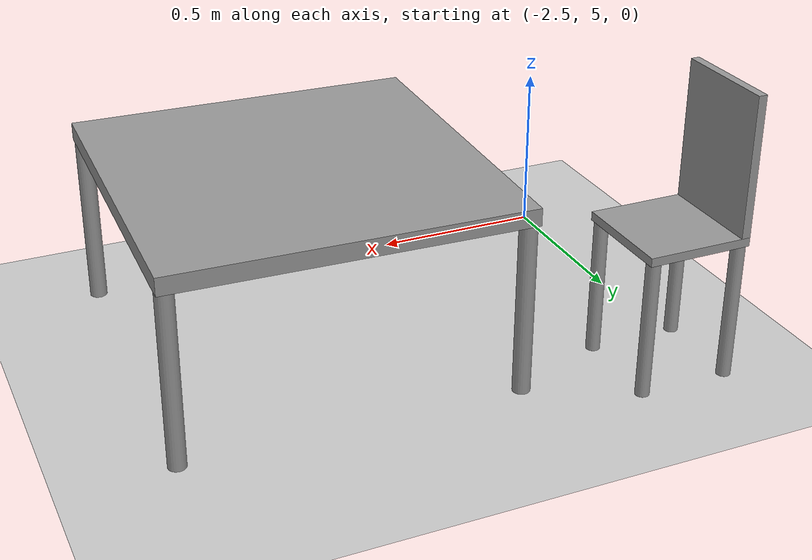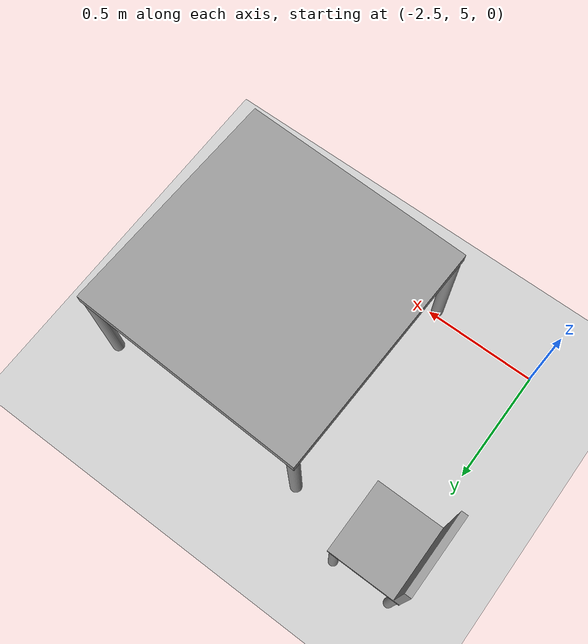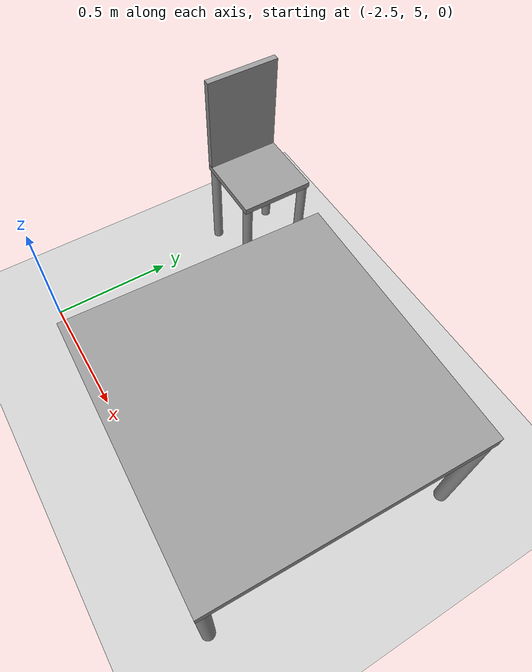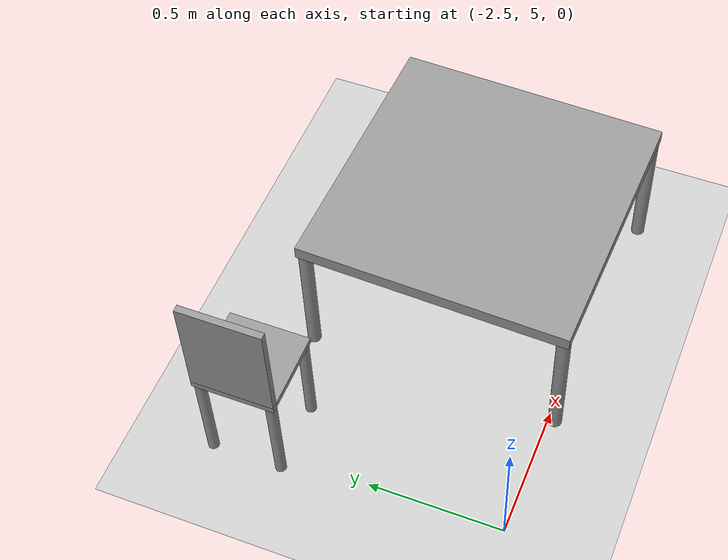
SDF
<sdf version="1.6">
 <world name="default">
  <model name="ground_plane">
   <static>1</static>
   <link name="link">
    <collision name="collision">
     <geometry><plane><normal>0 0 1</normal><size>100 100</size></plane></geometry>
     <surface><friction><ode><mu>100</mu><mu2>50</mu2></ode></friction></surface>
    </collision>
    <visual name="visual">
     <cast_shadows>0</cast_shadows>
     <geometry><plane><normal>0 0 1</normal><size>100 100</size></plane></geometry>
     <material>
      <script><uri>file://media/materials/scripts/gazebo.material</uri><name>Gazebo/Grey</name></script>
     </material>
    </visual>
   </link>
  </model>
  <model name="myTable">
   <link name="link_0">
    <pose>7.65666 6.42879 0.72 0 -0 0</pose>
    <inertial>
     <mass>1</mass>
     <inertia>
      <ixx>0.166667</ixx>
      <ixy>0</ixy>
      <ixz>0</ixz>
      <iyy>0.166667</iyy>
      <iyz>0</iyz>
      <izz>0.166667</izz>
     </inertia>
    </inertial>
    <visual name="visual">
     <geometry><box><size>1 1 0.05</size></box></geometry>
     <material>
      <lighting>1</lighting>
      <script><uri>file://media/materials/scripts/gazebo.material</uri><name>Gazebo/Grey</name></script>
      <ambient>0.3 0.3 0.3 1</ambient>
      <diffuse>0.7 0.7 0.7 1</diffuse>
      <specular>0.01 0.01 0.01 1</specular>
      <emissive>0 0 0 1</emissive>
      <shader type="vertex"><normal_map>__default__</normal_map></shader>
     </material>
    </visual>
    <collision name="collision">
     <geometry><box><size>1 1 0.05</size></box></geometry>
     <surface>
      <friction>
       <ode><mu>1</mu><mu2>1</mu2><fdir1>0 0 0</fdir1><slip1>0</slip1><slip2>0</slip2></ode>
       <torsional>
        <coefficient>1</coefficient>
        <patch_radius>0</patch_radius>
        <surface_radius>0</surface_radius>
        <use_patch_radius>1</use_patch_radius>
        <ode><slip>0</slip></ode>
       </torsional>
      </friction>
      <bounce><restitution_coefficient>0</restitution_coefficient><threshold>1e+06</threshold></bounce>
      <contact>
       <collide_without_contact>0</collide_without_contact>
       <collide_without_contact_bitmask>1</collide_without_contact_bitmask>
       <collide_bitmask>1</collide_bitmask>
       <ode>
        <soft_cfm>0</soft_cfm>
        <soft_erp>0.2</soft_erp>
        <kp>1e+13</kp>
        <kd>1</kd>
        <max_vel>0.01</max_vel>
        <min_depth>0</min_depth>
       </ode>
       <bullet>
        <split_impulse>1</split_impulse>
        <split_impulse_penetration_threshold>-0.01</split_impulse_penetration_threshold>
        <soft_cfm>0</soft_cfm>
        <soft_erp>0.2</soft_erp>
        <kp>1e+13</kp>
        <kd>1</kd>
       </bullet>
      </contact>
     </surface>
    </collision>
   </link>
   <link name="link_1">
    <pose>7.18166 5.95379 0.445 0 -0 0</pose>
    <inertial>
     <mass>1</mass>
     <inertia><ixx>0.145833</ixx><ixy>0</ixy><ixz>0</ixz><iyy>0.145833</iyy><iyz>0</iyz><izz>0.125</izz></inertia>
    </inertial>
    <visual name="visual">
     <geometry><cylinder><radius>0.025</radius><length>0.5</length></cylinder></geometry>
     <material>
      <lighting>1</lighting>
      <script><uri>file://media/materials/scripts/gazebo.material</uri><name>Gazebo/Grey</name></script>
      <ambient>0.3 0.3 0.3 1</ambient>
      <diffuse>0.7 0.7 0.7 1</diffuse>
      <specular>0.01 0.01 0.01 1</specular>
      <emissive>0 0 0 1</emissive>
      <shader type="vertex"><normal_map>__default__</normal_map></shader>
     </material>
    </visual>
    <collision name="collision">
     <geometry><cylinder><radius>0.025</radius><length>0.5</length></cylinder></geometry>
     <surface>
      <friction>
       <ode><mu>1</mu><mu2>1</mu2><fdir1>0 0 0</fdir1><slip1>0</slip1><slip2>0</slip2></ode>
       <torsional>
        <coefficient>1</coefficient>
        <patch_radius>0</patch_radius>
        <surface_radius>0</surface_radius>
        <use_patch_radius>1</use_patch_radius>
        <ode><slip>0</slip></ode>
       </torsional>
      </friction>
      <bounce><restitution_coefficient>0</restitution_coefficient><threshold>1e+06</threshold></bounce>
      <contact>
       <collide_without_contact>0</collide_without_contact>
       <collide_without_contact_bitmask>1</collide_without_contact_bitmask>
       <collide_bitmask>1</collide_bitmask>
       <ode>
        <soft_cfm>0</soft_cfm>
        <soft_erp>0.2</soft_erp>
        <kp>1e+13</kp>
        <kd>1</kd>
        <max_vel>0.01</max_vel>
        <min_depth>0</min_depth>
       </ode>
       <bullet>
        <split_impulse>1</split_impulse>
        <split_impulse_penetration_threshold>-0.01</split_impulse_penetration_threshold>
        <soft_cfm>0</soft_cfm>
        <soft_erp>0.2</soft_erp>
        <kp>1e+13</kp>
        <kd>1</kd>
       </bullet>
      </contact>
     </surface>
    </collision>
   </link>
   <link name="link_1_clone">
    <pose>7.18166 6.90379 0.445 0 -0 0</pose>
    <inertial>
     <mass>1</mass>
     <inertia><ixx>0.145833</ixx><ixy>0</ixy><ixz>0</ixz><iyy>0.145833</iyy><iyz>0</iyz><izz>0.125</izz></inertia>
    </inertial>
    <visual name="visual">
     <geometry><cylinder><radius>0.025</radius><length>0.5</length></cylinder></geometry>
     <material>
      <lighting>1</lighting>
      <script><uri>file://media/materials/scripts/gazebo.material</uri><name>Gazebo/Grey</name></script>
      <ambient>0.3 0.3 0.3 1</ambient>
      <diffuse>0.7 0.7 0.7 1</diffuse>
      <specular>0.01 0.01 0.01 1</specular>
      <emissive>0 0 0 1</emissive>
      <shader type="vertex"><normal_map>__default__</normal_map></shader>
     </material>
    </visual>
    <collision name="collision">
     <geometry><cylinder><radius>0.025</radius><length>0.5</length></cylinder></geometry>
     <surface>
      <friction>
       <ode><mu>1</mu><mu2>1</mu2><fdir1>0 0 0</fdir1><slip1>0</slip1><slip2>0</slip2></ode>
       <torsional>
        <coefficient>1</coefficient>
        <patch_radius>0</patch_radius>
        <surface_radius>0</surface_radius>
        <use_patch_radius>1</use_patch_radius>
        <ode><slip>0</slip></ode>
       </torsional>
      </friction>
      <bounce><restitution_coefficient>0</restitution_coefficient><threshold>1e+06</threshold></bounce>
      <contact>
       <collide_without_contact>0</collide_without_contact>
       <collide_without_contact_bitmask>1</collide_without_contact_bitmask>
       <collide_bitmask>1</collide_bitmask>
       <ode>
        <soft_cfm>0</soft_cfm>
        <soft_erp>0.2</soft_erp>
        <kp>1e+13</kp>
        <kd>1</kd>
        <max_vel>0.01</max_vel>
        <min_depth>0</min_depth>
       </ode>
       <bullet>
        <split_impulse>1</split_impulse>
        <split_impulse_penetration_threshold>-0.01</split_impulse_penetration_threshold>
        <soft_cfm>0</soft_cfm>
        <soft_erp>0.2</soft_erp>
        <kp>1e+13</kp>
        <kd>1</kd>
       </bullet>
      </contact>
     </surface>
    </collision>
   </link>
   <link name="link_1_clone_0">
    <pose>8.13166 6.90379 0.445 0 -0 0</pose>
    <inertial>
     <mass>1</mass>
     <inertia><ixx>0.145833</ixx><ixy>0</ixy><ixz>0</ixz><iyy>0.145833</iyy><iyz>0</iyz><izz>0.125</izz></inertia>
    </inertial>
    <visual name="visual">
     <geometry><cylinder><radius>0.025</radius><length>0.5</length></cylinder></geometry>
     <material>
      <lighting>1</lighting>
      <script><uri>file://media/materials/scripts/gazebo.material</uri><name>Gazebo/Grey</name></script>
      <ambient>0.3 0.3 0.3 1</ambient>
      <diffuse>0.7 0.7 0.7 1</diffuse>
      <specular>0.01 0.01 0.01 1</specular>
      <emissive>0 0 0 1</emissive>
      <shader type="vertex"><normal_map>__default__</normal_map></shader>
     </material>
    </visual>
    <collision name="collision">
     <geometry><cylinder><radius>0.025</radius><length>0.5</length></cylinder></geometry>
     <surface>
      <friction>
       <ode><mu>1</mu><mu2>1</mu2><fdir1>0 0 0</fdir1><slip1>0</slip1><slip2>0</slip2></ode>
       <torsional>
        <coefficient>1</coefficient>
        <patch_radius>0</patch_radius>
        <surface_radius>0</surface_radius>
        <use_patch_radius>1</use_patch_radius>
        <ode><slip>0</slip></ode>
       </torsional>
      </friction>
      <bounce><restitution_coefficient>0</restitution_coefficient><threshold>1e+06</threshold></bounce>
      <contact>
       <collide_without_contact>0</collide_without_contact>
       <collide_without_contact_bitmask>1</collide_without_contact_bitmask>
       <collide_bitmask>1</collide_bitmask>
       <ode>
        <soft_cfm>0</soft_cfm>
        <soft_erp>0.2</soft_erp>
        <kp>1e+13</kp>
        <kd>1</kd>
        <max_vel>0.01</max_vel>
        <min_depth>0</min_depth>
       </ode>
       <bullet>
        <split_impulse>1</split_impulse>
        <split_impulse_penetration_threshold>-0.01</split_impulse_penetration_threshold>
        <soft_cfm>0</soft_cfm>
        <soft_erp>0.2</soft_erp>
        <kp>1e+13</kp>
        <kd>1</kd>
       </bullet>
      </contact>
     </surface>
    </collision>
   </link>
   <link name="link_1_clone_1">
    <pose>8.13166 5.95379 0.445 0 -0 0</pose>
    <inertial>
     <mass>1</mass>
     <inertia><ixx>0.145833</ixx><ixy>0</ixy><ixz>0</ixz><iyy>0.145833</iyy><iyz>0</iyz><izz>0.125</izz></inertia>
    </inertial>
    <visual name="visual">
     <geometry><cylinder><radius>0.025</radius><length>0.5</length></cylinder></geometry>
     <material>
      <lighting>1</lighting>
      <script><uri>file://media/materials/scripts/gazebo.material</uri><name>Gazebo/Grey</name></script>
      <ambient>0.3 0.3 0.3 1</ambient>
      <diffuse>0.7 0.7 0.7 1</diffuse>
      <specular>0.01 0.01 0.01 1</specular>
      <emissive>0 0 0 1</emissive>
      <shader type="vertex"><normal_map>__default__</normal_map></shader>
     </material>
    </visual>
    <collision name="collision">
     <geometry><cylinder><radius>0.025</radius><length>0.5</length></cylinder></geometry>
     <surface>
      <friction>
       <ode><mu>1</mu><mu2>1</mu2><fdir1>0 0 0</fdir1><slip1>0</slip1><slip2>0</slip2></ode>
       <torsional>
        <coefficient>1</coefficient>
        <patch_radius>0</patch_radius>
        <surface_radius>0</surface_radius>
        <use_patch_radius>1</use_patch_radius>
        <ode><slip>0</slip></ode>
       </torsional>
      </friction>
      <bounce><restitution_coefficient>0</restitution_coefficient><threshold>1e+06</threshold></bounce>
      <contact>
       <collide_without_contact>0</collide_without_contact>
       <collide_without_contact_bitmask>1</collide_without_contact_bitmask>
       <collide_bitmask>1</collide_bitmask>
       <ode>
        <soft_cfm>0</soft_cfm>
        <soft_erp>0.2</soft_erp>
        <kp>1e+13</kp>
        <kd>1</kd>
        <max_vel>0.01</max_vel>
        <min_depth>0</min_depth>
       </ode>
       <bullet>
        <split_impulse>1</split_impulse>
        <split_impulse_penetration_threshold>-0.01</split_impulse_penetration_threshold>
        <soft_cfm>0</soft_cfm>
        <soft_erp>0.2</soft_erp>
        <kp>1e+13</kp>
        <kd>1</kd>
       </bullet>
      </contact>
     </surface>
    </collision>
   </link>
   <joint name="link_0_JOINT_0" type="fixed">
    <parent>link_0</parent>
    <child>link_1</child>
    <physics>
     <ode><limit><cfm>0</cfm><erp>0.2</erp></limit><suspension><cfm>0</cfm><erp>0.2</erp></suspension></ode>
    </physics>
   </joint>
   <joint name="link_0_JOINT_1" type="fixed">
    <parent>link_0</parent>
    <child>link_1_clone_1</child>
    <physics>
     <ode><limit><cfm>0</cfm><erp>0.2</erp></limit><suspension><cfm>0</cfm><erp>0.2</erp></suspension></ode>
    </physics>
   </joint>
   <joint name="link_0_JOINT_2" type="revolute">
    <parent>link_0</parent>
    <child>link_1_clone</child>
    <axis>
     <xyz>1 0 0</xyz>
     <use_parent_model_frame>0</use_parent_model_frame>
     <limit>
      <lower>-1.79769e+308</lower>
      <upper>1.79769e+308</upper>
      <effort>-1</effort>
      <velocity>-1</velocity>
     </limit>
     <dynamics>
      <spring_reference>0</spring_reference>
      <spring_stiffness>0</spring_stiffness>
      <damping>0</damping>
     </dynamics>
    </axis>
    <physics>
     <ode><limit><cfm>0</cfm><erp>0.2</erp></limit><suspension><cfm>0</cfm><erp>0.2</erp></suspension></ode>
    </physics>
   </joint>
   <joint name="link_0_JOINT_3" type="fixed">
    <parent>link_0</parent>
    <child>link_1_clone_0</child>
    <physics>
     <ode><limit><cfm>0</cfm><erp>0.2</erp></limit><suspension><cfm>0</cfm><erp>0.2</erp></suspension></ode>
    </physics>
   </joint>
   <static>0</static>
   <pose>-9.39862 -0.736906 -0.195 7e-06 6e-06 -0.033007</pose>
  </model>
  <model name="myChair_clone_clone_clone">
   <link name="link_0">
    <pose>0.022917 -0 0.0914 0 -0 0</pose>
    <inertial>
     <mass>1</mass>
     <inertia>
      <ixx>0.166667</ixx>
      <ixy>0</ixy>
      <ixz>0</ixz>
      <iyy>0.166667</iyy>
      <iyz>0</iyz>
      <izz>0.166667</izz>
     </inertia>
    </inertial>
    <visual name="visual">
     <geometry><box><size>0.3 0.3 0.025</size></box></geometry>
     <material>
      <lighting>1</lighting>
      <script><uri>file://media/materials/scripts/gazebo.material</uri><name>Gazebo/Grey</name></script>
      <ambient>0.3 0.3 0.3 1</ambient>
      <diffuse>0.7 0.7 0.7 1</diffuse>
      <specular>0.01 0.01 0.01 1</specular>
      <emissive>0 0 0 1</emissive>
      <shader type="vertex"><normal_map>__default__</normal_map></shader>
     </material>
    </visual>
    <collision name="collision">
     <geometry><box><size>0.3 0.3 0.025</size></box></geometry>
     <surface>
      <friction>
       <ode><mu>1</mu><mu2>1</mu2><fdir1>0 0 0</fdir1><slip1>0</slip1><slip2>0</slip2></ode>
       <torsional>
        <coefficient>1</coefficient>
        <patch_radius>0</patch_radius>
        <surface_radius>0</surface_radius>
        <use_patch_radius>1</use_patch_radius>
        <ode><slip>0</slip></ode>
       </torsional>
      </friction>
      <bounce><restitution_coefficient>0</restitution_coefficient><threshold>1e+06</threshold></bounce>
      <contact>
       <collide_without_contact>0</collide_without_contact>
       <collide_without_contact_bitmask>1</collide_without_contact_bitmask>
       <collide_bitmask>1</collide_bitmask>
       <ode>
        <soft_cfm>0</soft_cfm>
        <soft_erp>0.2</soft_erp>
        <kp>1e+13</kp>
        <kd>1</kd>
        <max_vel>0.01</max_vel>
        <min_depth>0</min_depth>
       </ode>
       <bullet>
        <split_impulse>1</split_impulse>
        <split_impulse_penetration_threshold>-0.01</split_impulse_penetration_threshold>
        <soft_cfm>0</soft_cfm>
        <soft_erp>0.2</soft_erp>
        <kp>1e+13</kp>
        <kd>1</kd>
       </bullet>
      </contact>
     </surface>
    </collision>
   </link>
   <link name="link_1">
    <pose>-0.107083 -0.13 -0.11875 0 -0 0</pose>
    <inertial>
     <mass>1</mass>
     <inertia><ixx>0.145833</ixx><ixy>0</ixy><ixz>0</ixz><iyy>0.145833</iyy><iyz>0</iyz><izz>0.125</izz></inertia>
    </inertial>
    <visual name="visual">
     <geometry><cylinder><radius>0.02</radius><length>0.4</length></cylinder></geometry>
     <material>
      <lighting>1</lighting>
      <script><uri>file://media/materials/scripts/gazebo.material</uri><name>Gazebo/Grey</name></script>
      <ambient>0.3 0.3 0.3 1</ambient>
      <diffuse>0.7 0.7 0.7 1</diffuse>
      <specular>0.01 0.01 0.01 1</specular>
      <emissive>0 0 0 1</emissive>
      <shader type="vertex"><normal_map>__default__</normal_map></shader>
     </material>
    </visual>
    <collision name="collision">
     <geometry><cylinder><radius>0.02</radius><length>0.4</length></cylinder></geometry>
     <surface>
      <friction>
       <ode><mu>1</mu><mu2>1</mu2><fdir1>0 0 0</fdir1><slip1>0</slip1><slip2>0</slip2></ode>
       <torsional>
        <coefficient>1</coefficient>
        <patch_radius>0</patch_radius>
        <surface_radius>0</surface_radius>
        <use_patch_radius>1</use_patch_radius>
        <ode><slip>0</slip></ode>
       </torsional>
      </friction>
      <bounce><restitution_coefficient>0</restitution_coefficient><threshold>1e+06</threshold></bounce>
      <contact>
       <collide_without_contact>0</collide_without_contact>
       <collide_without_contact_bitmask>1</collide_without_contact_bitmask>
       <collide_bitmask>1</collide_bitmask>
       <ode>
        <soft_cfm>0</soft_cfm>
        <soft_erp>0.2</soft_erp>
        <kp>1e+13</kp>
        <kd>1</kd>
        <max_vel>0.01</max_vel>
        <min_depth>0</min_depth>
       </ode>
       <bullet>
        <split_impulse>1</split_impulse>
        <split_impulse_penetration_threshold>-0.01</split_impulse_penetration_threshold>
        <soft_cfm>0</soft_cfm>
        <soft_erp>0.2</soft_erp>
        <kp>1e+13</kp>
        <kd>1</kd>
       </bullet>
      </contact>
     </surface>
    </collision>
   </link>
   <link name="link_1_clone">
    <pose>-0.107083 0.13 -0.11875 0 -0 0</pose>
    <inertial>
     <mass>1</mass>
     <inertia><ixx>0.145833</ixx><ixy>0</ixy><ixz>0</ixz><iyy>0.145833</iyy><iyz>0</iyz><izz>0.125</izz></inertia>
    </inertial>
    <visual name="visual">
     <geometry><cylinder><radius>0.02</radius><length>0.4</length></cylinder></geometry>
     <material>
      <lighting>1</lighting>
      <script><uri>file://media/materials/scripts/gazebo.material</uri><name>Gazebo/Grey</name></script>
      <ambient>0.3 0.3 0.3 1</ambient>
      <diffuse>0.7 0.7 0.7 1</diffuse>
      <specular>0.01 0.01 0.01 1</specular>
      <emissive>0 0 0 1</emissive>
      <shader type="vertex"><normal_map>__default__</normal_map></shader>
     </material>
    </visual>
    <collision name="collision">
     <geometry><cylinder><radius>0.02</radius><length>0.4</length></cylinder></geometry>
     <surface>
      <friction>
       <ode><mu>1</mu><mu2>1</mu2><fdir1>0 0 0</fdir1><slip1>0</slip1><slip2>0</slip2></ode>
       <torsional>
        <coefficient>1</coefficient>
        <patch_radius>0</patch_radius>
        <surface_radius>0</surface_radius>
        <use_patch_radius>1</use_patch_radius>
        <ode><slip>0</slip></ode>
       </torsional>
      </friction>
      <bounce><restitution_coefficient>0</restitution_coefficient><threshold>1e+06</threshold></bounce>
      <contact>
       <collide_without_contact>0</collide_without_contact>
       <collide_without_contact_bitmask>1</collide_without_contact_bitmask>
       <collide_bitmask>1</collide_bitmask>
       <ode>
        <soft_cfm>0</soft_cfm>
        <soft_erp>0.2</soft_erp>
        <kp>1e+13</kp>
        <kd>1</kd>
        <max_vel>0.01</max_vel>
        <min_depth>0</min_depth>
       </ode>
       <bullet>
        <split_impulse>1</split_impulse>
        <split_impulse_penetration_threshold>-0.01</split_impulse_penetration_threshold>
        <soft_cfm>0</soft_cfm>
        <soft_erp>0.2</soft_erp>
        <kp>1e+13</kp>
        <kd>1</kd>
       </bullet>
      </contact>
     </surface>
    </collision>
   </link>
   <link name="link_1_clone_0">
    <pose>0.152917 -0.13 -0.11875 0 -0 0</pose>
    <inertial>
     <mass>1</mass>
     <inertia><ixx>0.145833</ixx><ixy>0</ixy><ixz>0</ixz><iyy>0.145833</iyy><iyz>0</iyz><izz>0.125</izz></inertia>
    </inertial>
    <visual name="visual">
     <geometry><cylinder><radius>0.02</radius><length>0.4</length></cylinder></geometry>
     <material>
      <lighting>1</lighting>
      <script><uri>file://media/materials/scripts/gazebo.material</uri><name>Gazebo/Grey</name></script>
      <ambient>0.3 0.3 0.3 1</ambient>
      <diffuse>0.7 0.7 0.7 1</diffuse>
      <specular>0.01 0.01 0.01 1</specular>
      <emissive>0 0 0 1</emissive>
      <shader type="vertex"><normal_map>__default__</normal_map></shader>
     </material>
    </visual>
    <collision name="collision">
     <geometry><cylinder><radius>0.02</radius><length>0.4</length></cylinder></geometry>
     <surface>
      <friction>
       <ode><mu>1</mu><mu2>1</mu2><fdir1>0 0 0</fdir1><slip1>0</slip1><slip2>0</slip2></ode>
       <torsional>
        <coefficient>1</coefficient>
        <patch_radius>0</patch_radius>
        <surface_radius>0</surface_radius>
        <use_patch_radius>1</use_patch_radius>
        <ode><slip>0</slip></ode>
       </torsional>
      </friction>
      <bounce><restitution_coefficient>0</restitution_coefficient><threshold>1e+06</threshold></bounce>
      <contact>
       <collide_without_contact>0</collide_without_contact>
       <collide_without_contact_bitmask>1</collide_without_contact_bitmask>
       <collide_bitmask>1</collide_bitmask>
       <ode>
        <soft_cfm>0</soft_cfm>
        <soft_erp>0.2</soft_erp>
        <kp>1e+13</kp>
        <kd>1</kd>
        <max_vel>0.01</max_vel>
        <min_depth>0</min_depth>
       </ode>
       <bullet>
        <split_impulse>1</split_impulse>
        <split_impulse_penetration_threshold>-0.01</split_impulse_penetration_threshold>
        <soft_cfm>0</soft_cfm>
        <soft_erp>0.2</soft_erp>
        <kp>1e+13</kp>
        <kd>1</kd>
       </bullet>
      </contact>
     </surface>
    </collision>
   </link>
   <link name="link_1_clone_1">
    <pose>0.152917 0.13 -0.11875 0 -0 0</pose>
    <inertial>
     <mass>1</mass>
     <inertia><ixx>0.145833</ixx><ixy>0</ixy><ixz>0</ixz><iyy>0.145833</iyy><iyz>0</iyz><izz>0.125</izz></inertia>
    </inertial>
    <visual name="visual">
     <geometry><cylinder><radius>0.02</radius><length>0.4</length></cylinder></geometry>
     <material>
      <lighting>1</lighting>
      <script><uri>file://media/materials/scripts/gazebo.material</uri><name>Gazebo/Grey</name></script>
      <ambient>0.3 0.3 0.3 1</ambient>
      <diffuse>0.7 0.7 0.7 1</diffuse>
      <specular>0.01 0.01 0.01 1</specular>
      <emissive>0 0 0 1</emissive>
      <shader type="vertex"><normal_map>__default__</normal_map></shader>
     </material>
    </visual>
    <collision name="collision">
     <geometry><cylinder><radius>0.02</radius><length>0.4</length></cylinder></geometry>
     <surface>
      <friction>
       <ode><mu>1</mu><mu2>1</mu2><fdir1>0 0 0</fdir1><slip1>0</slip1><slip2>0</slip2></ode>
       <torsional>
        <coefficient>1</coefficient>
        <patch_radius>0</patch_radius>
        <surface_radius>0</surface_radius>
        <use_patch_radius>1</use_patch_radius>
        <ode><slip>0</slip></ode>
       </torsional>
      </friction>
      <bounce><restitution_coefficient>0</restitution_coefficient><threshold>1e+06</threshold></bounce>
      <contact>
       <collide_without_contact>0</collide_without_contact>
       <collide_without_contact_bitmask>1</collide_without_contact_bitmask>
       <collide_bitmask>1</collide_bitmask>
       <ode>
        <soft_cfm>0</soft_cfm>
        <soft_erp>0.2</soft_erp>
        <kp>1e+13</kp>
        <kd>1</kd>
        <max_vel>0.01</max_vel>
        <min_depth>0</min_depth>
       </ode>
       <bullet>
        <split_impulse>1</split_impulse>
        <split_impulse_penetration_threshold>-0.01</split_impulse_penetration_threshold>
        <soft_cfm>0</soft_cfm>
        <soft_erp>0.2</soft_erp>
        <kp>1e+13</kp>
        <kd>1</kd>
       </bullet>
      </contact>
     </surface>
    </collision>
   </link>
   <link name="link_2">
    <pose>-0.114583 0 0.303495 0 -0 0</pose>
    <inertial>
     <mass>1</mass>
     <inertia>
      <ixx>0.166667</ixx>
      <ixy>0</ixy>
      <ixz>0</ixz>
      <iyy>0.166667</iyy>
      <iyz>0</iyz>
      <izz>0.166667</izz>
     </inertia>
    </inertial>
    <visual name="visual">
     <geometry><box><size>0.025 0.3 0.4</size></box></geometry>
     <material>
      <lighting>1</lighting>
      <script><uri>file://media/materials/scripts/gazebo.material</uri><name>Gazebo/Grey</name></script>
      <ambient>0.3 0.3 0.3 1</ambient>
      <diffuse>0.7 0.7 0.7 1</diffuse>
      <specular>0.01 0.01 0.01 1</specular>
      <emissive>0 0 0 1</emissive>
      <shader type="vertex"><normal_map>__default__</normal_map></shader>
     </material>
    </visual>
    <collision name="collision">
     <geometry><box><size>0.025 0.3 0.4</size></box></geometry>
     <surface>
      <friction>
       <ode><mu>1</mu><mu2>1</mu2><fdir1>0 0 0</fdir1><slip1>0</slip1><slip2>0</slip2></ode>
       <torsional>
        <coefficient>1</coefficient>
        <patch_radius>0</patch_radius>
        <surface_radius>0</surface_radius>
        <use_patch_radius>1</use_patch_radius>
        <ode><slip>0</slip></ode>
       </torsional>
      </friction>
      <bounce><restitution_coefficient>0</restitution_coefficient><threshold>1e+06</threshold></bounce>
      <contact>
       <collide_without_contact>0</collide_without_contact>
       <collide_without_contact_bitmask>1</collide_without_contact_bitmask>
       <collide_bitmask>1</collide_bitmask>
       <ode>
        <soft_cfm>0</soft_cfm>
        <soft_erp>0.2</soft_erp>
        <kp>1e+13</kp>
        <kd>1</kd>
        <max_vel>0.01</max_vel>
        <min_depth>0</min_depth>
       </ode>
       <bullet>
        <split_impulse>1</split_impulse>
        <split_impulse_penetration_threshold>-0.01</split_impulse_penetration_threshold>
        <soft_cfm>0</soft_cfm>
        <soft_erp>0.2</soft_erp>
        <kp>1e+13</kp>
        <kd>1</kd>
       </bullet>
      </contact>
     </surface>
    </collision>
   </link>
   <joint name="link_0_JOINT_0" type="fixed">
    <parent>link_0</parent>
    <child>link_1</child>
    <physics>
     <ode><limit><cfm>0</cfm><erp>0.2</erp></limit><suspension><cfm>0</cfm><erp>0.2</erp></suspension></ode>
    </physics>
   </joint>
   <joint name="link_0_JOINT_1" type="fixed">
    <parent>link_0</parent>
    <child>link_1_clone</child>
    <physics>
     <ode><limit><cfm>0</cfm><erp>0.2</erp></limit><suspension><cfm>0</cfm><erp>0.2</erp></suspension></ode>
    </physics>
   </joint>
   <joint name="link_0_JOINT_2" type="fixed">
    <parent>link_0</parent>
    <child>link_1_clone_0</child>
    <physics>
     <ode><limit><cfm>0</cfm><erp>0.2</erp></limit><suspension><cfm>0</cfm><erp>0.2</erp></suspension></ode>
    </physics>
   </joint>
   <joint name="link_0_JOINT_3" type="fixed">
    <parent>link_0</parent>
    <child>link_1_clone_1</child>
    <physics>
     <ode><limit><cfm>0</cfm><erp>0.2</erp></limit><suspension><cfm>0</cfm><erp>0.2</erp></suspension></ode>
    </physics>
   </joint>
   <joint name="link_0_JOINT_5" type="revolute">
    <parent>link_0</parent>
    <child>link_2</child>
    <axis>
     <xyz>1 0 0</xyz>
     <use_parent_model_frame>0</use_parent_model_frame>
     <limit>
      <lower>-1.79769e+308</lower>
      <upper>1.79769e+308</upper>
      <effort>-1</effort>
      <velocity>-1</velocity>
     </limit>
     <dynamics>
      <spring_reference>0</spring_reference>
      <spring_stiffness>0</spring_stiffness>
      <damping>0</damping>
      <friction>0</friction>
     </dynamics>
    </axis>
    <physics>
     <ode><limit><cfm>0</cfm><erp>0.2</erp></limit><suspension><cfm>0</cfm><erp>0.2</erp></suspension></ode>
    </physics>
   </joint>
   <static>0</static>
   <pose>-2.43534 5.9432 0.31875 1e-06 -3e-06 -0.00128</pose>
  </model>
 </world>
</sdf>
